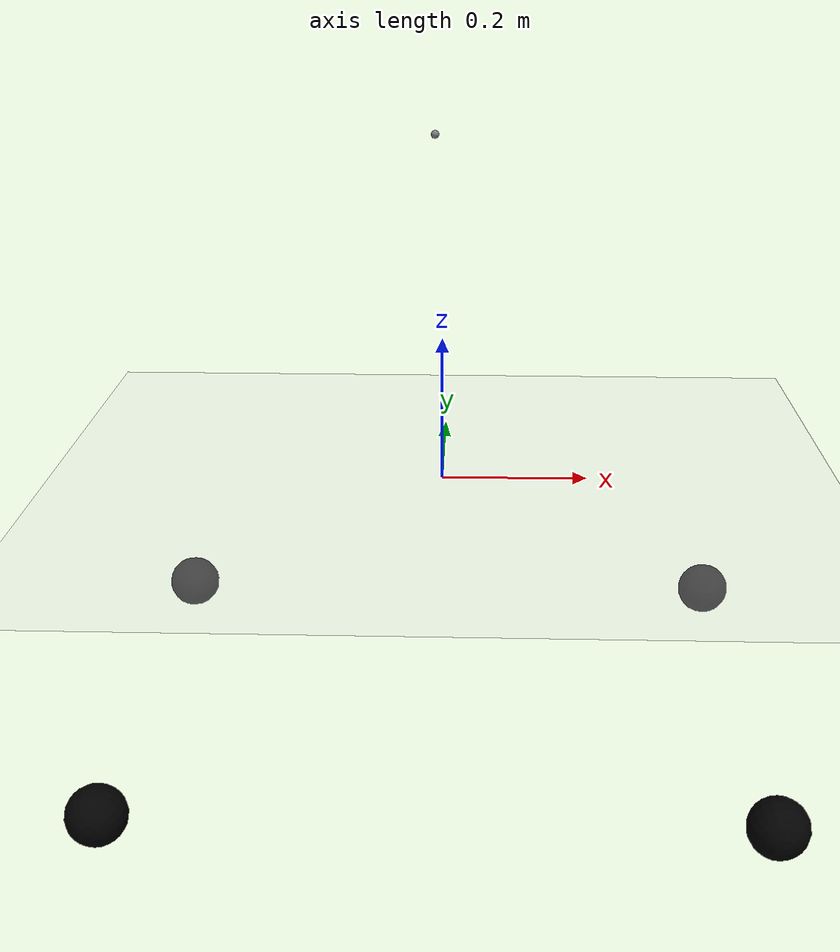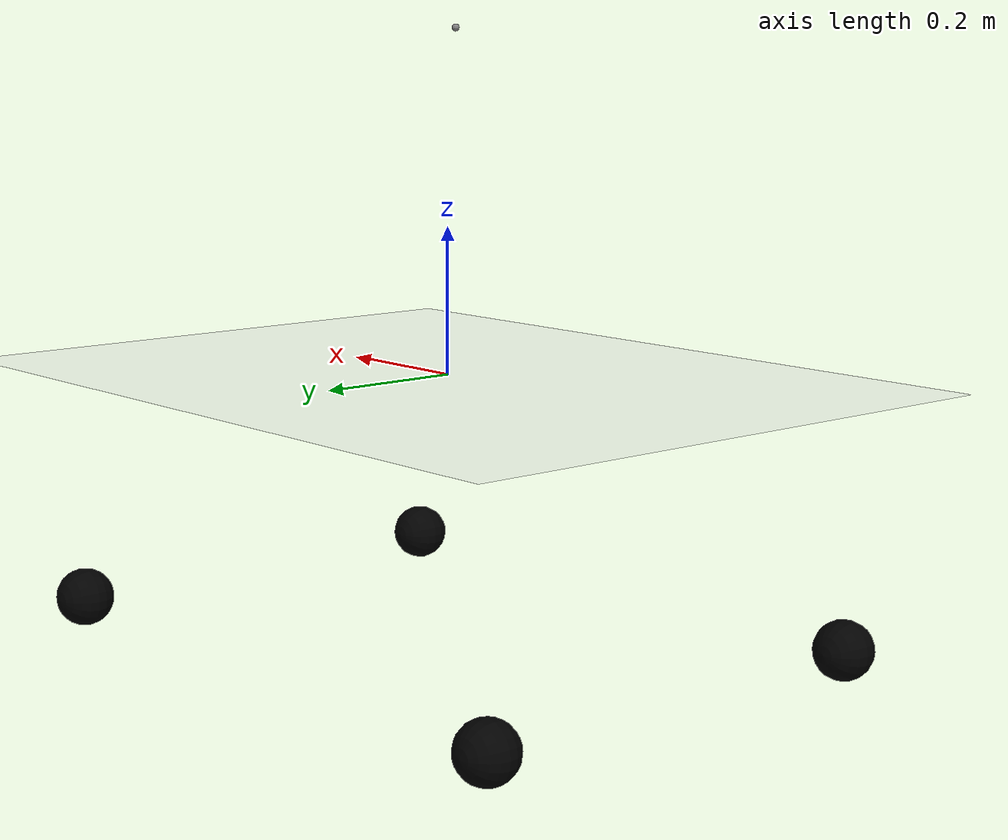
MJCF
<mujoco model="pegasus scene">
      <include file="pegasus.xml"/>

      <statistic center="0 0 0.1" extent="0.8"/>

      <visual>
            <headlight diffuse="0.4 0.4 0.4" ambient="0.25 0.25 0.25" specular="0.25 0.25 0.25"/>
            <rgba haze="0.99 0.99 0.99 1"/>
            <global azimuth="-130" elevation="-20"/>
      </visual>
      <asset>
            <texture
                  type="skybox"
                  builtin="gradient"
                  rgb1="0.99 0.99 0.99"
                  rgb2="0.99 0.99 0.99"
                  width="512"
                  height="3072"
            />
            <texture
                  type="2d"
                  name="groundplane"
                  builtin="checker"
                  mark="edge"
                  rgb1="0.93 0.93 0.93"
                  rgb2="0.93 0.93 0.93"
                  markrgb="0 0 0"
                  width="250"
                  height="250"
            />
            <material name="groundplane" texture="groundplane" texuniform="true" texrepeat="5 5" reflectance="0.0"/>

      </asset>

      <worldbody>
            <light pos="0 0 5.0" dir="0 0 -1" directional="true" castshadow="false"/>

            <geom name="floor" size="0 0 0.05" type="plane" material="groundplane"/>
      </worldbody>
</mujoco>

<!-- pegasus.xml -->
<mujoco model="pegasus_description">
  <compiler angle="radian" meshdir="../meshes/"/>

  <default>
    <default class="collision">
        <geom group="3"/>
    </default>

    <default class="visual">
        <geom contype="0" conaffinity="0" group="2"/>
    </default>
  </default>

  <asset>
    <!--mesh name="torso" content_type="model/obj" file="torso_v1.obj" scale="0.001 0.001 0.001"/-->
    <!--mesh name="torso" content_type="model/stl" file="torso_v2_decimated.stl" scale="0.001 0.001 0.001"/-->
    <!--mesh name="upper_leg_mirror" content_type="model/stl" file="upper_leg_mirror.stl" scale="0.001 0.001 0.001"/-->
    <!--mesh name="lower_leg" content_type="model/stl" file="lower_leg.stl" scale="0.001 0.001 0.001"/-->
    <!--mesh name="upper_leg" content_type="model/stl" file="upper_leg.stl" scale="0.001 0.001 0.001"/-->
  </asset>

  <worldbody>

    <body name="base" pos="0 0 0.5">
      <inertial pos="0.00846406 0.00404455 -0.000762916" quat="-3.12625e-05 0.708321 0.00247254 0.705886"
                mass="49.344" diaginertia="3.892899 3.367542 1.153365"/>
      <freejoint/>

      <!--geom type="mesh" class="visual" rgba="0 0.8 0 1" mesh="torso"/-->
      <!--geom type="mesh" class="collision" rgba="0 0.8 0 1" mesh="torso"/-->

      <site name="imu" pos="-0.0085648 -0.0065251 -0.03696" euler="0 0 -1.5707963267948966"/>

      <geom size="0.36 0.11 0.115" pos="0.0 0.0 -0.03" type="box" class="collision"/>

      <geom size="0.06 0.3" pos="0.0 0.18 0.035" quat="0.707107 0 0.707107 0" type="capsule" class="collision"/>
      <geom size="0.03 0.3" pos="0.0 0.21 -0.03" quat="0.707107 0 0.707107 0" type="capsule" class="collision"/>
      <geom size="0.06 0.3" pos="0.0 0.16 -0.09" quat="0.707107 0 0.707107 0" type="capsule" class="collision"/>

      <geom size="0.06 0.3" pos="0.0 -0.18 0.035" quat="0.707107 0 0.707107 0" type="capsule" class="collision"/>
      <geom size="0.03 0.3" pos="0.0 -0.21 -0.03" quat="0.707107 0 0.707107 0" type="capsule" class="collision"/>
      <geom size="0.06 0.3" pos="0.0 -0.16 -0.09" quat="0.707107 0 0.707107 0" type="capsule" class="collision"/>

      <body name="FL_hip" pos="0.334 0.163 0.0" quat="0.707107 0 0.707107 0">
        <inertial pos="0.000542 -0.02662 0.10103" quat="0.448339 0.468827 0.5263 0.549729" mass="2.871" diaginertia="0.00675174 0.00530183 0.00343653"/>
        <joint name="FL_hip_joint" pos="0 0 0" axis="0 0 1" range="-0.6109 1.5708" armature="0.3000" frictionloss="3.5022" damping="0.1000"/>

        <geom size="0.04 0.04" pos="0.01 0.14 0.07" quat="0.707107 0 0.707107 0" type="capsule" class="collision"/>
        <geom size="0.04 0.04" pos="0.01 0.14 0.12" quat="0.707107 0 0.707107 0" type="capsule" class="collision"/>

        <body name="FL_thigh" pos="0 0.1485 0.1045" quat="0.707107 -0.707107 0 0">
          <inertial pos="0.09529 0.07115 -0.05348" quat="0.26879 0.706508 0.241054 0.60868" mass="4.8923" diaginertia="0.119485 0.113691 0.00911342"/>
          <joint name="FL_thigh_joint" pos="0 0 0" axis="0 0 1" range="-2.9322 2.9322" armature="0.3416" frictionloss="2.1155" damping="0.4826"/>

          <!--geom type="mesh" class="visual" rgba="0.913725 0.913725 0.847059 1" mesh="upper_leg_mirror"/-->
          <geom size="0.15 0.025 0.025" class="collision" pos="0.25 0.03 0" type="box" rgba="0.913725 0.913725 0.847059 1"/>
          <geom size="0.05" class="collision" pos="0.42 0.015 0" rgba="0.913725 0.913725 0.847059 1"/>

          <body name="FL_calf" pos="0.418 0 0">
            <inertial pos="0.245582 0.00121522 0.000150716" quat="-0.00182183 0.705052 0.0268577 0.708644" mass="0.67" diaginertia="0.0173389 0.0171665 0.000549556"/>
            <joint name="FL_calf_joint" pos="0 0 0" axis="0 0 1" range="-2.7541 -0.6597" armature="0.6000" frictionloss="4.7939" damping="1.1445"/>

            <!--geom pos="0 0 0" quat="0 1 0 0" type="mesh" class="visual" rgba="0.913725 0.913725 0.847059 1" mesh="lower_leg"/-->

            <geom size="0.125 0.025 0.025" pos="0.15 -0.02 0" quat="0 0.988771 -0.149438 0" class="collision" type="box" rgba="0.913725 0.913725 0.847059 1"/>
            <geom size="0.075 0.025 0.025" pos="0.35 -0.04 0" quat="0 0.988771 0.149438 0" class="collision" type="box" rgba="0.913725 0.913725 0.847059 1"/>

            <geom size="0.041" pos="0.427146 0 0" class="visual" rgba="0 0 0 1"/>

            <!--geom name="FL_foot" size="0.041" pos="0.427146 0 0" class="collision" rgba="0 0 0 1"/-->

            <body name="FL_foot" pos="0.427146 0 0">
                <!-- FL_foot only collision -->
                <geom name="FL" class="collision" size="0.041"/>
            </body>

          </body>
        </body>
      </body>

      <body name="FR_hip" pos="0.334 -0.163 0.0" quat="0.707107 0 0.707107 0">
        <inertial pos="0.000542 0.02662 0.10103" quat="0.549729 0.5263 0.468827 0.448339" mass="2.871" diaginertia="0.00675174 0.00530183 0.00343653"/>
        <joint name="FR_hip_joint" pos="0 0 0" axis="0 0 -1" range="-0.6109 1.5708" armature="0.3000" frictionloss="2.2686" damping="0.1000"/>

        <geom size="0.04 0.04" pos="0.01 -0.14 0.07" quat="0.707107 0 0.707107 0" type="capsule" class="collision"/>
        <geom size="0.04 0.04" pos="0.01 -0.14 0.12" quat="0.707107 0 0.707107 0" type="capsule" class="collision"/>

        <body name="FR_thigh" pos="0 -0.1485 0.1045" quat="0.707107 -0.707107 0 0">
          <inertial pos="0.09529 0.07115 0.05348" quat="-0.241054 0.60868 -0.26879 0.706508" mass="4.8923" diaginertia="0.119485 0.113691 0.00911342"/>
          <joint name="FR_thigh_joint" pos="0 0 0" axis="0 0 1" range="-2.9322 2.9322" armature="0.3140" frictionloss="2.9168" damping="0.2063"/>

          <!--geom type="mesh" class="visual" rgba="0.913725 0.913725 0.847059 1" mesh="upper_leg"/-->
          <geom size="0.15 0.025 0.025" pos="0.25 0.03 0" class="collision" type="box" rgba="0.913725 0.913725 0.847059 1"/>
          <geom size="0.05" pos="0.42 0.015 0" class="collision" rgba="0.913725 0.913725 0.847059 1"/>

          <body name="FR_calf" pos="0.418 0 0">
            <inertial pos="0.245582 0.00121522 -0.000150716" quat="-0.0268577 0.708644 0.00182183 0.705052" mass="0.67" diaginertia="0.0173389 0.0171665 0.000549556"/>
            <joint name="FR_calf_joint" pos="0 0 0" axis="0 0 1" range="-2.7541 -0.6597" armature="0.6000" frictionloss="5.5299" damping="1.2399"/>

            <!--geom pos="0 0 0" quat="0 1 0 0" class="visual" type="mesh" rgba="0.913725 0.913725 0.847059 1" mesh="lower_leg"/-->

            <geom size="0.125 0.025 0.025" pos="0.15 -0.02 0" quat="0 0.988771 -0.149438 0" class="collision" type="box" rgba="0.913725 0.913725 0.847059 1"/>
            <geom size="0.075 0.025 0.025" pos="0.35 -0.04 0" quat="0 0.988771 0.149438 0" class="collision" type="box" rgba="0.913725 0.913725 0.847059 1"/>

            <geom size="0.041" pos="0.427146 0 0" class="visual" rgba="0 0 0 1"/>
            <!--geom name="FR_foot" size="0.041" pos="0.427146 0 0" class="collision" rgba="0 0 0 1"/-->

            <body name="FR_foot" pos="0.427146 0 0">
                <!-- FR_foot only collision -->
                <geom name="FR" class="collision" size="0.041"/>
            </body>

          </body>
        </body>
      </body>

      <body name="RL_hip" pos="-0.334 0.163 0.0" quat="0.707107 0 0.707107 0">
        <inertial pos="0.000542 -0.02662 -0.10103" quat="0.448339 0.468827 0.5263 0.549729" mass="2.871" diaginertia="0.00675174 0.00530183 0.00343653"/>
        <joint name="RL_hip_joint" pos="0 0 0" axis="0 0 1" range="-0.6109 1.5708" armature="0.3099" frictionloss="2.0989" damping="0.1000"/>

        <geom size="0.04 0.04" pos="0.01 0.14 -0.09" quat="0.707107 0 0.707107 0" type="capsule" class="collision"/>
        <geom size="0.04 0.04" pos="0.01 0.14 -0.14" quat="0.707107 0 0.707107 0" type="capsule" class="collision"/>

        <body name="RL_thigh" pos="0 0.1485 -0.1045" quat="0.707107 -0.707107 0 0">
          <inertial pos="0.09529 0.07115 -0.05348" quat="0.26879 0.706508 0.241054 0.60868" mass="4.8923" diaginertia="0.119485 0.113691 0.00911342"/>
          <joint name="RL_thigh_joint" pos="0 0 0" axis="0 0 1" range="-2.9322 2.9322" armature="0.3173" frictionloss="1.7164" damping="0.7960"/>

          <!--geom type="mesh" class="visual" rgba="0.913725 0.913725 0.847059 1" mesh="upper_leg_mirror"/-->
          <geom size="0.15 0.025 0.025" pos="0.25 0.03 0" class="collision" type="box" rgba="0.913725 0.913725 0.847059 1"/>
          <geom size="0.05" pos="0.42 0.015 0" class="collision" rgba="0.913725 0.913725 0.847059 1"/>

          <body name="RL_calf" pos="0.418 0 0">
            <inertial pos="0.245582 0.00121522 0.000150716" quat="-0.00182183 0.705052 0.0268577 0.708644" mass="0.67" diaginertia="0.0173389 0.0171665 0.000549556"/>
            <joint name="RL_calf_joint" pos="0 0 0" axis="0 0 1" range="-2.7541 -0.6597" armature="0.6000" frictionloss="4.4496" damping="1.7338"/>

            <!--geom pos="0 0 0" quat="0 1 0 0" type="mesh" class="visual" rgba="0.913725 0.913725 0.847059 1" mesh="lower_leg"/-->

            <geom size="0.125 0.025 0.025" pos="0.15 -0.02 0" quat="0 0.988771 -0.149438 0" class="collision" type="box" rgba="0.913725 0.913725 0.847059 1"/>
            <geom size="0.075 0.025 0.025" pos="0.35 -0.04 0" quat="0 0.988771 0.149438 0" class="collision" type="box" rgba="0.913725 0.913725 0.847059 1"/>

            <geom size="0.041" pos="0.427146 0 0" class="visual" rgba="0 0 0 1"/>
            <!--geom name="RL_foot" size="0.041" pos="0.427146 0 0" class="collision" rgba="0 0 0 1"/-->

            <body name="RL_foot" pos="0.427146 0 0">
                <!-- RL_foot only collision -->
                <geom name="RL" class="collision" size="0.041"/>
            </body>

          </body>
        </body>
      </body>

      <body name="RR_hip" pos="-0.334 -0.163 0.0" quat="0.707107 0 0.707107 0">
        <inertial pos="0.000542 0.02662 -0.10103" quat="0.549729 0.5263 0.468827 0.448339" mass="2.871" diaginertia="0.00675174 0.00530183 0.00343653"/>
        <joint name="RR_hip_joint" pos="0 0 0" axis="0 0 -1" range="-0.6109 1.5708" armature="0.3217" frictionloss="2.3307" damping="0.1000"/>

        <geom size="0.04 0.04" pos="0.01 -0.14 -0.09" quat="0.707107 0 0.707107 0" type="capsule" class="collision"/>
        <geom size="0.04 0.04" pos="0.01 -0.14 -0.14" quat="0.707107 0 0.707107 0" type="capsule" class="collision"/>

        <body name="RR_thigh" pos="0 -0.1485 -0.1045" quat="0.707107 -0.707107 0 0">
          <inertial pos="0.09529 0.07115 0.05348" quat="-0.241054 0.60868 -0.26879 0.706508" mass="4.8923" diaginertia="0.119485 0.113691 0.00911342"/>
          <joint name="RR_thigh_joint" pos="0 0 0" axis="0 0 1" range="-2.9322 2.9322" armature="0.3352" frictionloss="2.2130" damping="0.5969"/>

          <!--geom type="mesh" class="visual" rgba="0.913725 0.913725 0.847059 1" mesh="upper_leg"/-->
          <geom size="0.15 0.025 0.025" pos="0.25 0.03 0" class="collision" type="box" rgba="0.913725 0.913725 0.847059 1"/>
          <geom size="0.05" pos="0.42 0.015 0" class="collision" rgba="0.913725 0.913725 0.847059 1"/>

          <body name="RR_calf" pos="0.418 0 0">
            <inertial pos="0.245582 0.00121522 -0.000150716" quat="-0.0268577 0.708644 0.00182183 0.705052" mass="0.67" diaginertia="0.0173389 0.0171665 0.000549556"/>
            <joint name="RR_calf_joint" pos="0 0 0" axis="0 0 1" range="-2.7541 -0.6597" armature="0.6000" frictionloss="3.6588" damping="1.6016"/>

            <!--geom pos="0 0 0" quat="0 1 0 0" type="mesh" class="visual" rgba="0.913725 0.913725 0.847059 1" mesh="lower_leg"/-->
            <geom size="0.125 0.025 0.025" pos="0.15 -0.02 0" quat="0 0.988771 -0.149438 0" type="box" class="collision" rgba="0.913725 0.913725 0.847059 1"/>
            <geom size="0.075 0.025 0.025" pos="0.35 -0.04 0" quat="0 0.988771 0.149438 0" type="box" class="collision" rgba="0.913725 0.913725 0.847059 1"/>

            <geom size="0.041" pos="0.427146 0 0" class="visual" rgba="0 0 0 1"/>
            <!--geom name="RR_foot" size="0.041" pos="0.427146 0 0" class="collision" rgba="0 0 0 1"/-->

            <body name="RR_foot" pos="0.427146 0 0">
                <!-- RR_foot only collision -->
                <geom name="RR" class="collision" size="0.041"/>
            </body>

          </body>
        </body>
      </body>
    </body>
  </worldbody>

    <actuator>
        <motor name="FL_hip" joint="FL_hip_joint" ctrlrange="-120 120"/>
        <motor name="FL_thigh" joint="FL_thigh_joint" ctrlrange="-120 120"/>
        <motor name="FL_calf" joint="FL_calf_joint" ctrlrange="-210 210"/>
        <motor name="FR_hip" joint="FR_hip_joint" ctrlrange="-120 120"/>
        <motor name="FR_thigh" joint="FR_thigh_joint" ctrlrange="-120 120"/>
        <motor name="FR_calf" joint="FR_calf_joint" ctrlrange="-210 210"/>
        <motor name="RL_hip" joint="RL_hip_joint" ctrlrange="-120 120"/>
        <motor name="RL_thigh" joint="RL_thigh_joint" ctrlrange="-120 120"/>
        <motor name="RL_calf" joint="RL_calf_joint" ctrlrange="-210 210"/>
        <motor name="RR_hip" joint="RR_hip_joint" ctrlrange="-120 120"/>
        <motor name="RR_thigh" joint="RR_thigh_joint" ctrlrange="-120 120"/>
        <motor name="RR_calf" joint="RR_calf_joint" ctrlrange="-210 210"/>
    </actuator>

    <sensor>
        <accelerometer name="imu_acc" site="imu"/>
        <gyro name="imu_gyro" site="imu"/>
        <framepos name="imu_pos" objtype="site" objname="imu"/>
        <framequat name="imu_quat" objtype="site" objname="imu"/>

        <jointpos name="FL_hip_joint_pos" joint="FL_hip_joint"/>
        <jointpos name="FL_thigh_joint_pos" joint="FL_thigh_joint"/>
        <jointpos name="FL_calf_joint_pos" joint="FL_calf_joint"/>
        <jointpos name="FR_hip_joint_pos" joint="FR_hip_joint"/>
        <jointpos name="FR_thigh_joint_pos" joint="FR_thigh_joint"/>
        <jointpos name="FR_calf_joint_pos" joint="FR_calf_joint"/>
        <jointpos name="RL_hip_joint_pos" joint="RL_hip_joint"/>
        <jointpos name="RL_thigh_joint_pos" joint="RL_thigh_joint"/>
        <jointpos name="RL_calf_joint_pos" joint="RL_calf_joint"/>
        <jointpos name="RR_hip_joint_pos" joint="RR_hip_joint"/>
        <jointpos name="RR_thigh_joint_pos" joint="RR_thigh_joint"/>
        <jointpos name="RR_calf_joint_pos" joint="RR_calf_joint"/>
    </sensor>

    <keyframe>
        <key name="home" qpos="0 0 0.5 1 0 0 0 0 0.9 -1.8 0 0.9 -1.8 0 0.9 -1.8 0 0.9 -1.8"/>
        <key name="down" qpos="0 0 0.05 1 0 0 0 0.0 1.21 -2.794 0.0 1.21 -2.794 0.0 1.21 -2.794 0.0 1.21 -2.794"/>
        <key name="sys_id_1" qpos="0 0 0.05 1 0 0 0 0.0 1.21 -2.5 0.0 1.21 -2.5 0.0 1.21 -2.5 0.0 1.21 -2.5"/>
        <key name="sys_id_2" qpos="0 0 0.05 1 0 0 0 0.6 0.5 -1.4 0.6 0.5 -1.4 0.6 0.5 -1.4 0.6 0.5 -1.4"/>
    </keyframe>

</mujoco>
